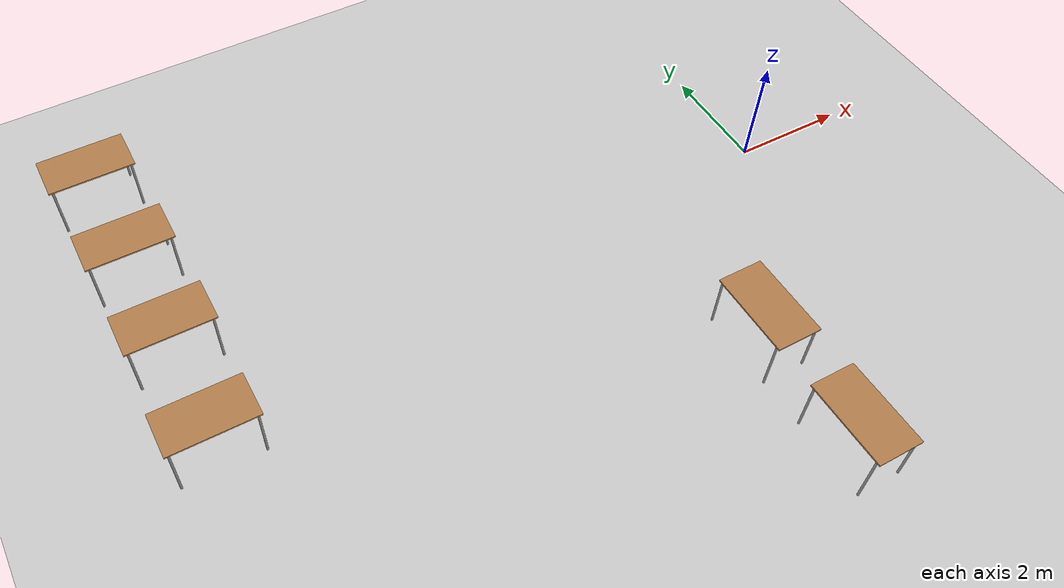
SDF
<sdf version="1.6">
 <world name="default">
  <model name="ground_plane">
   <static>1</static>
   <link name="link">
    <collision name="collision">
     <geometry><plane><normal>0 0 1</normal><size>100 100</size></plane></geometry>
     <surface><friction><ode><mu>100</mu><mu2>50</mu2></ode></friction></surface>
    </collision>
    <visual name="visual">
     <cast_shadows>0</cast_shadows>
     <geometry><plane><normal>0 0 1</normal><size>100 100</size></plane></geometry>
     <material>
      <script><uri>file://media/materials/scripts/gazebo.material</uri><name>Gazebo/Grey</name></script>
     </material>
    </visual>
   </link>
  </model>
  <model name="table">
   <static>1</static>
   <link name="link">
    <collision name="surface">
     <pose>0 0 1 0 -0 0</pose>
     <geometry><box><size>1.5 0.8 0.03</size></box></geometry>
     <surface><friction><ode><mu>0.6</mu><mu2>0.6</mu2></ode></friction></surface>
    </collision>
    <visual name="visual1">
     <pose>0 0 1 0 -0 0</pose>
     <geometry><box><size>1.5 0.8 0.03</size></box></geometry>
     <material>
      <script><uri>file://media/materials/scripts/gazebo.material</uri><name>Gazebo/Wood</name></script>
     </material>
    </visual>
    <collision name="front_left_leg">
     <pose>0.68 0.38 0.5 0 -0 0</pose>
     <geometry><cylinder><radius>0.02</radius><length>1</length></cylinder></geometry>
    </collision>
    <visual name="front_left_leg">
     <pose>0.68 0.38 0.5 0 -0 0</pose>
     <geometry><cylinder><radius>0.02</radius><length>1</length></cylinder></geometry>
     <material>
      <script><uri>file://media/materials/scripts/gazebo.material</uri><name>Gazebo/Grey</name></script>
     </material>
    </visual>
    <collision name="front_right_leg">
     <pose>0.68 -0.38 0.5 0 -0 0</pose>
     <geometry><cylinder><radius>0.02</radius><length>1</length></cylinder></geometry>
    </collision>
    <visual name="front_right_leg">
     <pose>0.68 -0.38 0.5 0 -0 0</pose>
     <geometry><cylinder><radius>0.02</radius><length>1</length></cylinder></geometry>
     <material>
      <script><uri>file://media/materials/scripts/gazebo.material</uri><name>Gazebo/Grey</name></script>
     </material>
    </visual>
    <collision name="back_right_leg">
     <pose>-0.68 -0.38 0.5 0 -0 0</pose>
     <geometry><cylinder><radius>0.02</radius><length>1</length></cylinder></geometry>
    </collision>
    <visual name="back_right_leg">
     <pose>-0.68 -0.38 0.5 0 -0 0</pose>
     <geometry><cylinder><radius>0.02</radius><length>1</length></cylinder></geometry>
     <material>
      <script><uri>file://media/materials/scripts/gazebo.material</uri><name>Gazebo/Grey</name></script>
     </material>
    </visual>
    <collision name="back_left_leg">
     <pose>-0.68 0.38 0.5 0 -0 0</pose>
     <geometry><cylinder><radius>0.02</radius><length>1</length></cylinder></geometry>
    </collision>
    <visual name="back_left_leg">
     <pose>-0.68 0.38 0.5 0 -0 0</pose>
     <geometry><cylinder><radius>0.02</radius><length>1</length></cylinder></geometry>
     <material>
      <script><uri>file://media/materials/scripts/gazebo.material</uri><name>Gazebo/Grey</name></script>
     </material>
    </visual>
   </link>
   <pose>-10.8284 4.47721 0 0 -0 0</pose>
  </model>
  <model name="table_clone">
   <static>1</static>
   <link name="link">
    <collision name="surface">
     <pose>0 0 1 0 -0 0</pose>
     <geometry><box><size>1.5 0.8 0.03</size></box></geometry>
     <surface><friction><ode><mu>0.6</mu><mu2>0.6</mu2></ode></friction></surface>
    </collision>
    <visual name="visual1">
     <pose>0 0 1 0 -0 0</pose>
     <geometry><box><size>1.5 0.8 0.03</size></box></geometry>
     <material>
      <script><uri>file://media/materials/scripts/gazebo.material</uri><name>Gazebo/Wood</name></script>
     </material>
    </visual>
    <collision name="front_left_leg">
     <pose>0.68 0.38 0.5 0 -0 0</pose>
     <geometry><cylinder><radius>0.02</radius><length>1</length></cylinder></geometry>
    </collision>
    <visual name="front_left_leg">
     <pose>0.68 0.38 0.5 0 -0 0</pose>
     <geometry><cylinder><radius>0.02</radius><length>1</length></cylinder></geometry>
     <material>
      <script><uri>file://media/materials/scripts/gazebo.material</uri><name>Gazebo/Grey</name></script>
     </material>
    </visual>
    <collision name="front_right_leg">
     <pose>0.68 -0.38 0.5 0 -0 0</pose>
     <geometry><cylinder><radius>0.02</radius><length>1</length></cylinder></geometry>
    </collision>
    <visual name="front_right_leg">
     <pose>0.68 -0.38 0.5 0 -0 0</pose>
     <geometry><cylinder><radius>0.02</radius><length>1</length></cylinder></geometry>
     <material>
      <script><uri>file://media/materials/scripts/gazebo.material</uri><name>Gazebo/Grey</name></script>
     </material>
    </visual>
    <collision name="back_right_leg">
     <pose>-0.68 -0.38 0.5 0 -0 0</pose>
     <geometry><cylinder><radius>0.02</radius><length>1</length></cylinder></geometry>
    </collision>
    <visual name="back_right_leg">
     <pose>-0.68 -0.38 0.5 0 -0 0</pose>
     <geometry><cylinder><radius>0.02</radius><length>1</length></cylinder></geometry>
     <material>
      <script><uri>file://media/materials/scripts/gazebo.material</uri><name>Gazebo/Grey</name></script>
     </material>
    </visual>
    <collision name="back_left_leg">
     <pose>-0.68 0.38 0.5 0 -0 0</pose>
     <geometry><cylinder><radius>0.02</radius><length>1</length></cylinder></geometry>
    </collision>
    <visual name="back_left_leg">
     <pose>-0.68 0.38 0.5 0 -0 0</pose>
     <geometry><cylinder><radius>0.02</radius><length>1</length></cylinder></geometry>
     <material>
      <script><uri>file://media/materials/scripts/gazebo.material</uri><name>Gazebo/Grey</name></script>
     </material>
    </visual>
   </link>
   <pose>-10.7679 2.61108 0 0 -0 0</pose>
  </model>
  <model name="table_clone_0">
   <static>1</static>
   <link name="link">
    <collision name="surface">
     <pose>0 0 1 0 -0 0</pose>
     <geometry><box><size>1.5 0.8 0.03</size></box></geometry>
     <surface><friction><ode><mu>0.6</mu><mu2>0.6</mu2></ode></friction></surface>
    </collision>
    <visual name="visual1">
     <pose>0 0 1 0 -0 0</pose>
     <geometry><box><size>1.5 0.8 0.03</size></box></geometry>
     <material>
      <script><uri>file://media/materials/scripts/gazebo.material</uri><name>Gazebo/Wood</name></script>
     </material>
    </visual>
    <collision name="front_left_leg">
     <pose>0.68 0.38 0.5 0 -0 0</pose>
     <geometry><cylinder><radius>0.02</radius><length>1</length></cylinder></geometry>
    </collision>
    <visual name="front_left_leg">
     <pose>0.68 0.38 0.5 0 -0 0</pose>
     <geometry><cylinder><radius>0.02</radius><length>1</length></cylinder></geometry>
     <material>
      <script><uri>file://media/materials/scripts/gazebo.material</uri><name>Gazebo/Grey</name></script>
     </material>
    </visual>
    <collision name="front_right_leg">
     <pose>0.68 -0.38 0.5 0 -0 0</pose>
     <geometry><cylinder><radius>0.02</radius><length>1</length></cylinder></geometry>
    </collision>
    <visual name="front_right_leg">
     <pose>0.68 -0.38 0.5 0 -0 0</pose>
     <geometry><cylinder><radius>0.02</radius><length>1</length></cylinder></geometry>
     <material>
      <script><uri>file://media/materials/scripts/gazebo.material</uri><name>Gazebo/Grey</name></script>
     </material>
    </visual>
    <collision name="back_right_leg">
     <pose>-0.68 -0.38 0.5 0 -0 0</pose>
     <geometry><cylinder><radius>0.02</radius><length>1</length></cylinder></geometry>
    </collision>
    <visual name="back_right_leg">
     <pose>-0.68 -0.38 0.5 0 -0 0</pose>
     <geometry><cylinder><radius>0.02</radius><length>1</length></cylinder></geometry>
     <material>
      <script><uri>file://media/materials/scripts/gazebo.material</uri><name>Gazebo/Grey</name></script>
     </material>
    </visual>
    <collision name="back_left_leg">
     <pose>-0.68 0.38 0.5 0 -0 0</pose>
     <geometry><cylinder><radius>0.02</radius><length>1</length></cylinder></geometry>
    </collision>
    <visual name="back_left_leg">
     <pose>-0.68 0.38 0.5 0 -0 0</pose>
     <geometry><cylinder><radius>0.02</radius><length>1</length></cylinder></geometry>
     <material>
      <script><uri>file://media/materials/scripts/gazebo.material</uri><name>Gazebo/Grey</name></script>
     </material>
    </visual>
   </link>
   <pose>-10.7328 0.775775 0 0 -0 0</pose>
  </model>
  <model name="table_clone_1">
   <static>1</static>
   <link name="link">
    <collision name="surface">
     <pose>0 0 1 0 -0 0</pose>
     <geometry><box><size>1.5 0.8 0.03</size></box></geometry>
     <surface><friction><ode><mu>0.6</mu><mu2>0.6</mu2></ode></friction></surface>
    </collision>
    <visual name="visual1">
     <pose>0 0 1 0 -0 0</pose>
     <geometry><box><size>1.5 0.8 0.03</size></box></geometry>
     <material>
      <script><uri>file://media/materials/scripts/gazebo.material</uri><name>Gazebo/Wood</name></script>
     </material>
    </visual>
    <collision name="front_left_leg">
     <pose>0.68 0.38 0.5 0 -0 0</pose>
     <geometry><cylinder><radius>0.02</radius><length>1</length></cylinder></geometry>
    </collision>
    <visual name="front_left_leg">
     <pose>0.68 0.38 0.5 0 -0 0</pose>
     <geometry><cylinder><radius>0.02</radius><length>1</length></cylinder></geometry>
     <material>
      <script><uri>file://media/materials/scripts/gazebo.material</uri><name>Gazebo/Grey</name></script>
     </material>
    </visual>
    <collision name="front_right_leg">
     <pose>0.68 -0.38 0.5 0 -0 0</pose>
     <geometry><cylinder><radius>0.02</radius><length>1</length></cylinder></geometry>
    </collision>
    <visual name="front_right_leg">
     <pose>0.68 -0.38 0.5 0 -0 0</pose>
     <geometry><cylinder><radius>0.02</radius><length>1</length></cylinder></geometry>
     <material>
      <script><uri>file://media/materials/scripts/gazebo.material</uri><name>Gazebo/Grey</name></script>
     </material>
    </visual>
    <collision name="back_right_leg">
     <pose>-0.68 -0.38 0.5 0 -0 0</pose>
     <geometry><cylinder><radius>0.02</radius><length>1</length></cylinder></geometry>
    </collision>
    <visual name="back_right_leg">
     <pose>-0.68 -0.38 0.5 0 -0 0</pose>
     <geometry><cylinder><radius>0.02</radius><length>1</length></cylinder></geometry>
     <material>
      <script><uri>file://media/materials/scripts/gazebo.material</uri><name>Gazebo/Grey</name></script>
     </material>
    </visual>
    <collision name="back_left_leg">
     <pose>-0.68 0.38 0.5 0 -0 0</pose>
     <geometry><cylinder><radius>0.02</radius><length>1</length></cylinder></geometry>
    </collision>
    <visual name="back_left_leg">
     <pose>-0.68 0.38 0.5 0 -0 0</pose>
     <geometry><cylinder><radius>0.02</radius><length>1</length></cylinder></geometry>
     <material>
      <script><uri>file://media/materials/scripts/gazebo.material</uri><name>Gazebo/Grey</name></script>
     </material>
    </visual>
   </link>
   <pose>-10.7696 -1.13888 0 0 -0 0</pose>
  </model>
  <model name="table_clone_2">
   <static>1</static>
   <link name="link">
    <collision name="surface">
     <pose>0 0 1 0 -0 0</pose>
     <geometry><box><size>1.5 0.8 0.03</size></box></geometry>
     <surface><friction><ode><mu>0.6</mu><mu2>0.6</mu2></ode></friction></surface>
    </collision>
    <visual name="visual1">
     <pose>0 0 1 0 -0 0</pose>
     <geometry><box><size>1.5 0.8 0.03</size></box></geometry>
     <material>
      <script><uri>file://media/materials/scripts/gazebo.material</uri><name>Gazebo/Wood</name></script>
     </material>
    </visual>
    <collision name="front_left_leg">
     <pose>0.68 0.38 0.5 0 -0 0</pose>
     <geometry><cylinder><radius>0.02</radius><length>1</length></cylinder></geometry>
    </collision>
    <visual name="front_left_leg">
     <pose>0.68 0.38 0.5 0 -0 0</pose>
     <geometry><cylinder><radius>0.02</radius><length>1</length></cylinder></geometry>
     <material>
      <script><uri>file://media/materials/scripts/gazebo.material</uri><name>Gazebo/Grey</name></script>
     </material>
    </visual>
    <collision name="front_right_leg">
     <pose>0.68 -0.38 0.5 0 -0 0</pose>
     <geometry><cylinder><radius>0.02</radius><length>1</length></cylinder></geometry>
    </collision>
    <visual name="front_right_leg">
     <pose>0.68 -0.38 0.5 0 -0 0</pose>
     <geometry><cylinder><radius>0.02</radius><length>1</length></cylinder></geometry>
     <material>
      <script><uri>file://media/materials/scripts/gazebo.material</uri><name>Gazebo/Grey</name></script>
     </material>
    </visual>
    <collision name="back_right_leg">
     <pose>-0.68 -0.38 0.5 0 -0 0</pose>
     <geometry><cylinder><radius>0.02</radius><length>1</length></cylinder></geometry>
    </collision>
    <visual name="back_right_leg">
     <pose>-0.68 -0.38 0.5 0 -0 0</pose>
     <geometry><cylinder><radius>0.02</radius><length>1</length></cylinder></geometry>
     <material>
      <script><uri>file://media/materials/scripts/gazebo.material</uri><name>Gazebo/Grey</name></script>
     </material>
    </visual>
    <collision name="back_left_leg">
     <pose>-0.68 0.38 0.5 0 -0 0</pose>
     <geometry><cylinder><radius>0.02</radius><length>1</length></cylinder></geometry>
    </collision>
    <visual name="back_left_leg">
     <pose>-0.68 0.38 0.5 0 -0 0</pose>
     <geometry><cylinder><radius>0.02</radius><length>1</length></cylinder></geometry>
     <material>
      <script><uri>file://media/materials/scripts/gazebo.material</uri><name>Gazebo/Grey</name></script>
     </material>
    </visual>
   </link>
   <pose>-2.3987 -5.658 0 0 -0 1.56891</pose>
  </model>
  <model name="table_clone_2_clone_1">
   <static>1</static>
   <link name="link">
    <collision name="surface">
     <pose>0 0 1 0 -0 0</pose>
     <geometry><box><size>1.5 0.8 0.03</size></box></geometry>
     <surface><friction><ode><mu>0.6</mu><mu2>0.6</mu2></ode></friction></surface>
    </collision>
    <visual name="visual1">
     <pose>0 0 1 0 -0 0</pose>
     <geometry><box><size>1.5 0.8 0.03</size></box></geometry>
     <material>
      <script><uri>file://media/materials/scripts/gazebo.material</uri><name>Gazebo/Wood</name></script>
     </material>
    </visual>
    <collision name="front_left_leg">
     <pose>0.68 0.38 0.5 0 -0 0</pose>
     <geometry><cylinder><radius>0.02</radius><length>1</length></cylinder></geometry>
    </collision>
    <visual name="front_left_leg">
     <pose>0.68 0.38 0.5 0 -0 0</pose>
     <geometry><cylinder><radius>0.02</radius><length>1</length></cylinder></geometry>
     <material>
      <script><uri>file://media/materials/scripts/gazebo.material</uri><name>Gazebo/Grey</name></script>
     </material>
    </visual>
    <collision name="front_right_leg">
     <pose>0.68 -0.38 0.5 0 -0 0</pose>
     <geometry><cylinder><radius>0.02</radius><length>1</length></cylinder></geometry>
    </collision>
    <visual name="front_right_leg">
     <pose>0.68 -0.38 0.5 0 -0 0</pose>
     <geometry><cylinder><radius>0.02</radius><length>1</length></cylinder></geometry>
     <material>
      <script><uri>file://media/materials/scripts/gazebo.material</uri><name>Gazebo/Grey</name></script>
     </material>
    </visual>
    <collision name="back_right_leg">
     <pose>-0.68 -0.38 0.5 0 -0 0</pose>
     <geometry><cylinder><radius>0.02</radius><length>1</length></cylinder></geometry>
    </collision>
    <visual name="back_right_leg">
     <pose>-0.68 -0.38 0.5 0 -0 0</pose>
     <geometry><cylinder><radius>0.02</radius><length>1</length></cylinder></geometry>
     <material>
      <script><uri>file://media/materials/scripts/gazebo.material</uri><name>Gazebo/Grey</name></script>
     </material>
    </visual>
    <collision name="back_left_leg">
     <pose>-0.68 0.38 0.5 0 -0 0</pose>
     <geometry><cylinder><radius>0.02</radius><length>1</length></cylinder></geometry>
    </collision>
    <visual name="back_left_leg">
     <pose>-0.68 0.38 0.5 0 -0 0</pose>
     <geometry><cylinder><radius>0.02</radius><length>1</length></cylinder></geometry>
     <material>
      <script><uri>file://media/materials/scripts/gazebo.material</uri><name>Gazebo/Grey</name></script>
     </material>
    </visual>
   </link>
   <pose>-2.41546 -3.45797 0 0 -0 1.56891</pose>
  </model>
 </world>
</sdf>
